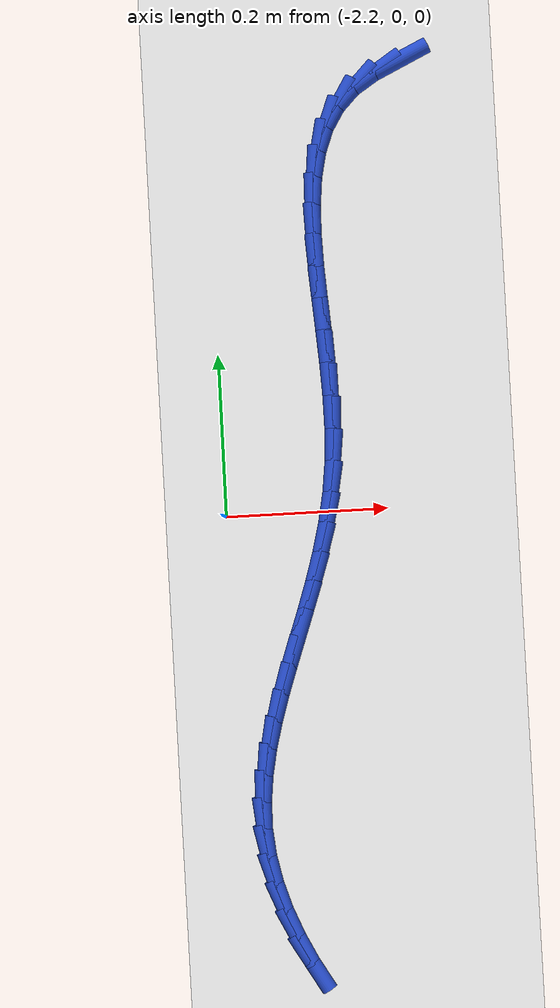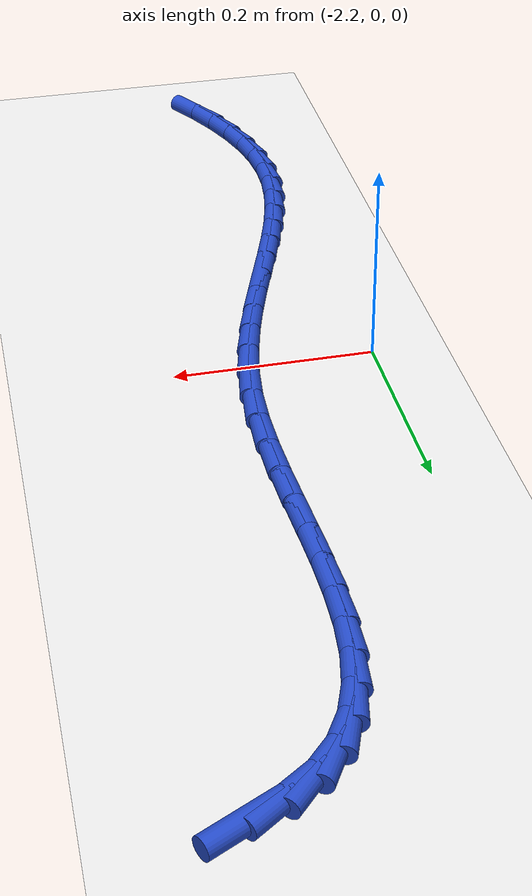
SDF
<sdf version="1.6">
 <world name="default">
  <model name="ground_plane">
   <static>1</static>
   <link name="link">
    <collision name="collision">
     <geometry><plane><normal>0 0 1</normal><size>100 100</size></plane></geometry>
     <surface><friction><ode><mu>100</mu><mu2>50</mu2></ode></friction></surface>
    </collision>
    <visual name="visual">
     <cast_shadows>0</cast_shadows>
     <geometry><plane><normal>0 0 1</normal><size>100 100</size></plane></geometry>
     <material>
      <script><uri>file://media/materials/scripts/gazebo.material</uri><name>Gazebo/WhiteGlow</name></script>
     </material>
    </visual>
   </link>
  </model>
  <model name="line">
   <link name="link_82">
    <pose>-1.9577804385458584 0.5518490217916984 0.01 0 1.57 0.4423481648905247</pose>
    <collision name="collision">
     <geometry><cylinder><radius>0.01</radius><length>0.08</length></cylinder></geometry>
    </collision>
    <visual name="visual">
     <material>
      <script><name>Gazebo/Blue</name><uri>file://media/materials/scripts/gazebo.material</uri></script>
     </material>
     <geometry><cylinder><radius>0.01</radius><length>0.08</length></cylinder></geometry>
    </visual>
   </link>
   <link name="link_83">
    <pose>-1.9888826577574903 0.5371173839402146 0.01 0 1.57 0.5804655285490732</pose>
    <collision name="collision">
     <geometry><cylinder><radius>0.01</radius><length>0.08</length></cylinder></geometry>
    </collision>
    <visual name="visual">
     <material>
      <script><name>Gazebo/Blue</name><uri>file://media/materials/scripts/gazebo.material</uri></script>
     </material>
     <geometry><cylinder><radius>0.01</radius><length>0.08</length></cylinder></geometry>
    </visual>
   </link>
   <link name="link_84">
    <pose>-2.0155571063807964 0.5196233734289553 0.01 0 1.57 0.7997326084828695</pose>
    <collision name="collision">
     <geometry><cylinder><radius>0.01</radius><length>0.08</length></cylinder></geometry>
    </collision>
    <visual name="visual">
     <material>
      <script><name>Gazebo/Blue</name><uri>file://media/materials/scripts/gazebo.material</uri></script>
     </material>
     <geometry><cylinder><radius>0.01</radius><length>0.08</length></cylinder></geometry>
    </visual>
   </link>
   <link name="link_85">
    <pose>-2.0364553385311743 0.49811725683425223 0.01 0 1.57 1.0212201846810391</pose>
    <collision name="collision">
     <geometry><cylinder><radius>0.01</radius><length>0.08</length></cylinder></geometry>
    </collision>
    <visual name="visual">
     <material>
      <script><name>Gazebo/Blue</name><uri>file://media/materials/scripts/gazebo.material</uri></script>
     </material>
     <geometry><cylinder><radius>0.01</radius><length>0.08</length></cylinder></geometry>
    </visual>
   </link>
   <link name="link_86">
    <pose>-2.0519752740898656 0.47277950405251673 0.01 0 1.57 1.2104198833814694</pose>
    <collision name="collision">
     <geometry><cylinder><radius>0.01</radius><length>0.08</length></cylinder></geometry>
    </collision>
    <visual name="visual">
     <material>
      <script><name>Gazebo/Blue</name><uri>file://media/materials/scripts/gazebo.material</uri></script>
     </material>
     <geometry><cylinder><radius>0.01</radius><length>0.08</length></cylinder></geometry>
    </visual>
   </link>
   <link name="link_87">
    <pose>-2.0628085898790474 0.44403116009932375 0.01 0 1.57 1.3585767072100767</pose>
    <collision name="collision">
     <geometry><cylinder><radius>0.01</radius><length>0.08</length></cylinder></geometry>
    </collision>
    <visual name="visual">
     <material>
      <script><name>Gazebo/Blue</name><uri>file://media/materials/scripts/gazebo.material</uri></script>
     </material>
     <geometry><cylinder><radius>0.01</radius><length>0.08</length></cylinder></geometry>
    </visual>
   </link>
   <link name="link_88">
    <pose>-2.0696469627208964 0.41229326999024846 0.01 0 1.57 1.4681136070497314</pose>
    <collision name="collision">
     <geometry><cylinder><radius>0.01</radius><length>0.08</length></cylinder></geometry>
    </collision>
    <visual name="visual">
     <material>
      <script><name>Gazebo/Blue</name><uri>file://media/materials/scripts/gazebo.material</uri></script>
     </material>
     <geometry><cylinder><radius>0.01</radius><length>0.08</length></cylinder></geometry>
    </visual>
   </link>
   <link name="link_89">
    <pose>-2.073182069437591 0.3779868787408662 0.01 0 1.57 1.5454678640009556</pose>
    <collision name="collision">
     <geometry><cylinder><radius>0.01</radius><length>0.08</length></cylinder></geometry>
    </collision>
    <visual name="visual">
     <material>
      <script><name>Gazebo/Blue</name><uri>file://media/materials/scripts/gazebo.material</uri></script>
     </material>
     <geometry><cylinder><radius>0.01</radius><length>0.08</length></cylinder></geometry>
    </visual>
   </link>
   <link name="link_90">
    <pose>-2.0741055868513074 0.34153303136675195 0.01 0 1.57 -1.5447051216166339</pose>
    <collision name="collision">
     <geometry><cylinder><radius>0.01</radius><length>0.08</length></cylinder></geometry>
    </collision>
    <visual name="visual">
     <material>
      <script><name>Gazebo/Blue</name><uri>file://media/materials/scripts/gazebo.material</uri></script>
     </material>
     <geometry><cylinder><radius>0.01</radius><length>0.08</length></cylinder></geometry>
    </visual>
   </link>
   <link name="link_91">
    <pose>-2.073109191784224 0.3033527728834812 0.01 0 1.57 -1.5145155563761439</pose>
    <collision name="collision">
     <geometry><cylinder><radius>0.01</radius><length>0.08</length></cylinder></geometry>
    </collision>
    <visual name="visual">
     <material>
      <script><name>Gazebo/Blue</name><uri>file://media/materials/scripts/gazebo.material</uri></script>
     </material>
     <geometry><cylinder><radius>0.01</radius><length>0.08</length></cylinder></geometry>
    </visual>
   </link>
   <link name="link_92">
    <pose>-2.070884561058518 0.26386714830662883 0.01 0 1.57 -1.5025055280205466</pose>
    <collision name="collision">
     <geometry><cylinder><radius>0.01</radius><length>0.08</length></cylinder></geometry>
    </collision>
    <visual name="visual">
     <material>
      <script><name>Gazebo/Blue</name><uri>file://media/materials/scripts/gazebo.material</uri></script>
     </material>
     <geometry><cylinder><radius>0.01</radius><length>0.08</length></cylinder></geometry>
    </visual>
   </link>
   <link name="link_93">
    <pose>-2.068123371496366 0.22349720265177037 0.01 0 1.57 -1.5070604357522162</pose>
    <collision name="collision">
     <geometry><cylinder><radius>0.01</radius><length>0.08</length></cylinder></geometry>
    </collision>
    <visual name="visual">
     <material>
      <script><name>Gazebo/Blue</name><uri>file://media/materials/scripts/gazebo.material</uri></script>
     </material>
     <geometry><cylinder><radius>0.01</radius><length>0.08</length></cylinder></geometry>
    </visual>
   </link>
   <link name="link_94">
    <pose>-2.0655172999199456 0.1826639809344807 0.01 0 1.57 -1.5277829400402785</pose>
    <collision name="collision">
     <geometry><cylinder><radius>0.01</radius><length>0.08</length></cylinder></geometry>
    </collision>
    <visual name="visual">
     <material>
      <script><name>Gazebo/Blue</name><uri>file://media/materials/scripts/gazebo.material</uri></script>
     </material>
     <geometry><cylinder><radius>0.01</radius><length>0.08</length></cylinder></geometry>
    </visual>
   </link>
   <link name="link_95">
    <pose>-2.063758023151434 0.14178852817033522 0.01 0 1.57 -1.56534394958717</pose>
    <collision name="collision">
     <geometry><cylinder><radius>0.01</radius><length>0.08</length></cylinder></geometry>
    </collision>
    <visual name="visual">
     <material>
      <script><name>Gazebo/Blue</name><uri>file://media/materials/scripts/gazebo.material</uri></script>
     </material>
     <geometry><cylinder><radius>0.01</radius><length>0.08</length></cylinder></geometry>
    </visual>
   </link>
   <link name="link_96">
    <pose>-2.0635372180130096 0.10129188937490943 0.01 0 1.57 1.5202222020452698</pose>
    <collision name="collision">
     <geometry><cylinder><radius>0.01</radius><length>0.08</length></cylinder></geometry>
    </collision>
    <visual name="visual">
     <material>
      <script><name>Gazebo/Blue</name><uri>file://media/materials/scripts/gazebo.material</uri></script>
     </material>
     <geometry><cylinder><radius>0.01</radius><length>0.08</length></cylinder></geometry>
    </visual>
   </link>
   <link name="link_97">
    <pose>-2.0655465613268484 0.061595109563777756 0.01 0 1.57 1.4476053044038526</pose>
    <collision name="collision">
     <geometry><cylinder><radius>0.01</radius><length>0.08</length></cylinder></geometry>
    </collision>
    <visual name="visual">
     <material>
      <script><name>Gazebo/Blue</name><uri>file://media/materials/scripts/gazebo.material</uri></script>
     </material>
     <geometry><cylinder><radius>0.01</radius><length>0.08</length></cylinder></geometry>
    </visual>
   </link>
   <link name="link_98">
    <pose>-2.0703193826316473 0.02304804182137968 0.01 0 1.57 1.3788538432883348</pose>
    <collision name="collision">
     <geometry><cylinder><radius>0.01</radius><length>0.08</length></cylinder></geometry>
    </collision>
    <visual name="visual">
     <material>
      <script><name>Gazebo/Blue</name><uri>file://media/materials/scripts/gazebo.material</uri></script>
     </material>
     <geometry><cylinder><radius>0.01</radius><length>0.08</length></cylinder></geometry>
    </visual>
   </link>
   <link name="link_99">
    <pose>-2.077588912254047 -0.014359180282790257 0.01 0 1.57 1.3219497996935883</pose>
    <collision name="collision">
     <geometry><cylinder><radius>0.01</radius><length>0.08</length></cylinder></geometry>
    </collision>
    <visual name="visual">
     <material>
      <script><name>Gazebo/Blue</name><uri>file://media/materials/scripts/gazebo.material</uri></script>
     </material>
     <geometry><cylinder><radius>0.01</radius><length>0.08</length></cylinder></geometry>
    </visual>
   </link>
   <link name="link_100">
    <pose>-2.0868362576743134 -0.050749776006784784 0.01 0 1.57 1.2778668801926918</pose>
    <collision name="collision">
     <geometry><cylinder><radius>0.01</radius><length>0.08</length></cylinder></geometry>
    </collision>
    <visual name="visual">
     <material>
      <script><name>Gazebo/Blue</name><uri>file://media/materials/scripts/gazebo.material</uri></script>
     </material>
     <geometry><cylinder><radius>0.01</radius><length>0.08</length></cylinder></geometry>
    </visual>
   </link>
   <link name="link_101">
    <pose>-2.0975424320340856 -0.08624700702270213 0.01 0 1.57 1.2472247774610374</pose>
    <collision name="collision">
     <geometry><cylinder><radius>0.01</radius><length>0.08</length></cylinder></geometry>
    </collision>
    <visual name="visual">
     <material>
      <script><name>Gazebo/Blue</name><uri>file://media/materials/scripts/gazebo.material</uri></script>
     </material>
     <geometry><cylinder><radius>0.01</radius><length>0.08</length></cylinder></geometry>
    </visual>
   </link>
   <link name="link_102">
    <pose>-2.1091884484750065 -0.12097413500264045 0.01 0 1.57 1.2304985996729334</pose>
    <collision name="collision">
     <geometry><cylinder><radius>0.01</radius><length>0.08</length></cylinder></geometry>
    </collision>
    <visual name="visual">
     <material>
      <script><name>Gazebo/Blue</name><uri>file://media/materials/scripts/gazebo.material</uri></script>
     </material>
     <geometry><cylinder><radius>0.01</radius><length>0.08</length></cylinder></geometry>
    </visual>
   </link>
   <link name="link_103">
    <pose>-2.121255320138715 -0.15505442161869798 0.01 0 1.57 1.2281899817560527</pose>
    <collision name="collision">
     <geometry><cylinder><radius>0.01</radius><length>0.08</length></cylinder></geometry>
    </collision>
    <visual name="visual">
     <material>
      <script><name>Gazebo/Blue</name><uri>file://media/materials/scripts/gazebo.material</uri></script>
     </material>
     <geometry><cylinder><radius>0.01</radius><length>0.08</length></cylinder></geometry>
    </visual>
   </link>
   <link name="link_104">
    <pose>-2.133224060166852 -0.1886111285429728 0.01 0 1.57 1.240938484703332</pose>
    <collision name="collision">
     <geometry><cylinder><radius>0.01</radius><length>0.08</length></cylinder></geometry>
    </collision>
    <visual name="visual">
     <material>
      <script><name>Gazebo/Blue</name><uri>file://media/materials/scripts/gazebo.material</uri></script>
     </material>
     <geometry><cylinder><radius>0.01</radius><length>0.08</length></cylinder></geometry>
    </visual>
   </link>
   <link name="link_105">
    <pose>-2.1445756817010584 -0.22176751744756312 0.01 0 1.57 1.2695547194643895</pose>
    <collision name="collision">
     <geometry><cylinder><radius>0.01</radius><length>0.08</length></cylinder></geometry>
    </collision>
    <visual name="visual">
     <material>
      <script><name>Gazebo/Blue</name><uri>file://media/materials/scripts/gazebo.material</uri></script>
     </material>
     <geometry><cylinder><radius>0.01</radius><length>0.08</length></cylinder></geometry>
    </visual>
   </link>
   <link name="link_106">
    <pose>-2.154791197882975 -0.2546468500045671 0.01 0 1.57 1.3149466592297743</pose>
    <collision name="collision">
     <geometry><cylinder><radius>0.01</radius><length>0.08</length></cylinder></geometry>
    </collision>
    <visual name="visual">
     <material>
      <script><name>Gazebo/Blue</name><uri>file://media/materials/scripts/gazebo.material</uri></script>
     </material>
     <geometry><cylinder><radius>0.01</radius><length>0.08</length></cylinder></geometry>
    </visual>
   </link>
   <link name="link_107">
    <pose>-2.163351621854242 -0.287372387886083 0.01 0 1.57 1.377894285587252</pose>
    <collision name="collision">
     <geometry><cylinder><radius>0.01</radius><length>0.08</length></cylinder></geometry>
    </collision>
    <visual name="visual">
     <material>
      <script><name>Gazebo/Blue</name><uri>file://media/materials/scripts/gazebo.material</uri></script>
     </material>
     <geometry><cylinder><radius>0.01</radius><length>0.08</length></cylinder></geometry>
    </visual>
   </link>
   <link name="link_108">
    <pose>-2.1697379667565007 -0.3200673927642089 0.01 0 1.57 1.458627048164715</pose>
    <collision name="collision">
     <geometry><cylinder><radius>0.01</radius><length>0.08</length></cylinder></geometry>
    </collision>
    <visual name="visual">
     <material>
      <script><name>Gazebo/Blue</name><uri>file://media/materials/scripts/gazebo.material</uri></script>
     </material>
     <geometry><cylinder><radius>0.01</radius><length>0.08</length></cylinder></geometry>
    </visual>
   </link>
   <link name="link_109">
    <pose>-2.1734312457313902 -0.352855126311043 0.01 0 1.57 1.5562163935873796</pose>
    <collision name="collision">
     <geometry><cylinder><radius>0.01</radius><length>0.08</length></cylinder></geometry>
    </collision>
    <visual name="visual">
     <material>
      <script><name>Gazebo/Blue</name><uri>file://media/materials/scripts/gazebo.material</uri></script>
     </material>
     <geometry><cylinder><radius>0.01</radius><length>0.08</length></cylinder></geometry>
    </visual>
   </link>
   <link name="link_110">
    <pose>-2.1739124719205525 -0.3858588501986834 0.01 0 1.57 -1.4752956884118023</pose>
    <collision name="collision">
     <geometry><cylinder><radius>0.01</radius><length>0.08</length></cylinder></geometry>
    </collision>
    <visual name="visual">
     <material>
      <script><name>Gazebo/Blue</name><uri>file://media/materials/scripts/gazebo.material</uri></script>
     </material>
     <geometry><cylinder><radius>0.01</radius><length>0.08</length></cylinder></geometry>
    </visual>
   </link>
   <link name="link_111">
    <pose>-2.1707209990770373 -0.4191755328910492 0.01 0 1.57 -1.369716108425137</pose>
    <collision name="collision">
     <geometry><cylinder><radius>0.01</radius><length>0.08</length></cylinder></geometry>
    </collision>
    <visual name="visual">
     <material>
      <script><name>Gazebo/Blue</name><uri>file://media/materials/scripts/gazebo.material</uri></script>
     </material>
     <geometry><cylinder><radius>0.01</radius><length>0.08</length></cylinder></geometry>
    </visual>
   </link>
   <link name="link_112">
    <pose>-2.16389187648331 -0.45267874056960505 0.01 0 1.57 -1.2753301289641874</pose>
    <collision name="collision">
     <geometry><cylinder><radius>0.01</radius><length>0.08</length></cylinder></geometry>
    </collision>
    <visual name="visual">
     <material>
      <script><name>Gazebo/Blue</name><uri>file://media/materials/scripts/gazebo.material</uri></script>
     </material>
     <geometry><cylinder><radius>0.01</radius><length>0.08</length></cylinder></geometry>
    </visual>
   </link>
   <link name="link_113">
    <pose>-2.153710350814577 -0.48612927933369876 0.01 0 1.57 -1.1907154682215992</pose>
    <collision name="collision">
     <geometry><cylinder><radius>0.01</radius><length>0.08</length></cylinder></geometry>
    </collision>
    <visual name="visual">
     <material>
      <script><name>Gazebo/Blue</name><uri>file://media/materials/scripts/gazebo.material</uri></script>
     </material>
     <geometry><cylinder><radius>0.01</radius><length>0.08</length></cylinder></geometry>
    </visual>
   </link>
   <link name="link_114">
    <pose>-2.140463590911528 -0.5192870889925235 0.01 0 1.57 -1.1142279070440866</pose>
    <collision name="collision">
     <geometry><cylinder><radius>0.01</radius><length>0.08</length></cylinder></geometry>
    </collision>
    <visual name="visual">
     <material>
      <script><name>Gazebo/Blue</name><uri>file://media/materials/scripts/gazebo.material</uri></script>
     </material>
     <geometry><cylinder><radius>0.01</radius><length>0.08</length></cylinder></geometry>
    </visual>
   </link>
   <link name="link_115">
    <pose>-2.1244387656148573 -0.551912109355273 0.01 0 1.57 -1.0442390307046217</pose>
    <collision name="collision">
     <geometry><cylinder><radius>0.01</radius><length>0.08</length></cylinder></geometry>
    </collision>
    <visual name="visual">
     <material>
      <script><name>Gazebo/Blue</name><uri>file://media/materials/scripts/gazebo.material</uri></script>
     </material>
     <geometry><cylinder><radius>0.01</radius><length>0.08</length></cylinder></geometry>
    </visual>
   </link>
  </model>
 </world>
</sdf>
